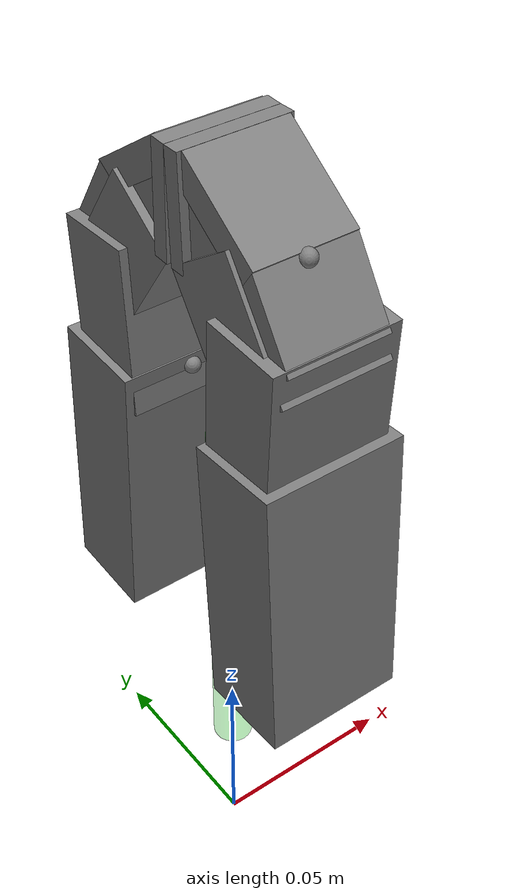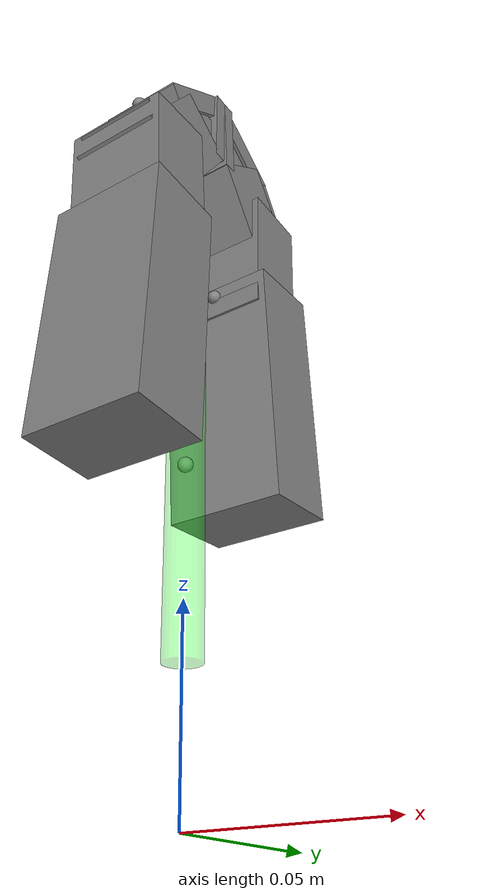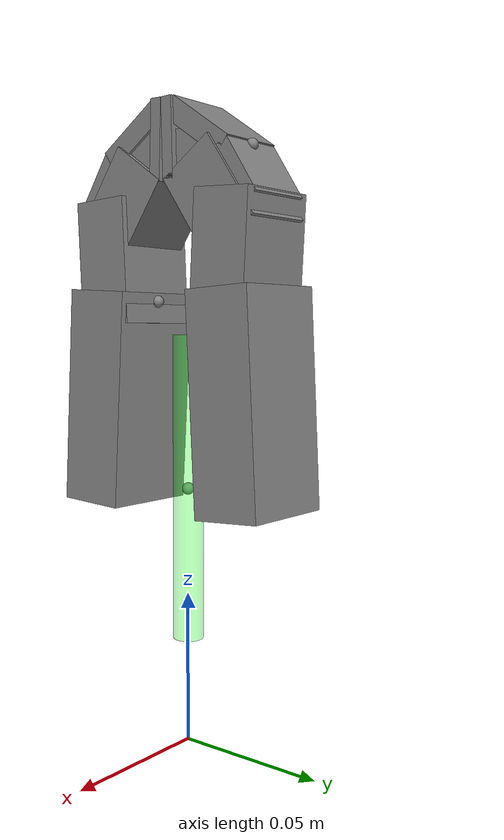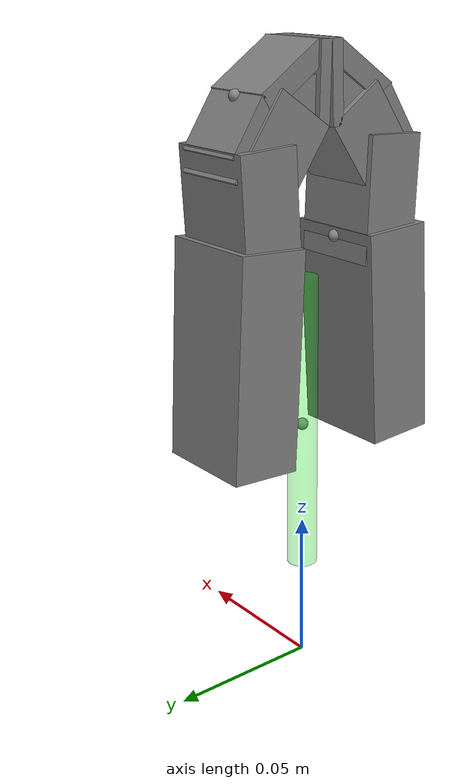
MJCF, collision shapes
<?xml version='1.0' encoding='utf-8'?>
<mujoco model="P-Rob3 P-Grip">

    <asset>
        <mesh name="finger" file="meshes/finger.obj" />
        <mesh name="finger_connector_shape"
              file="meshes/finger_connector_shape.obj"
              scale="0.01 0.01 0.01" />
        <mesh name="screw" file="meshes/screw.obj" />

        <material name="rubber"
                  rgba="0.025 0.025 0.025 1"
                  shininess="0.9"
                  specular="0.25" />

        <material name="metal"
                  rgba="0.7 0.7 0.7 1"
                  shininess="0.3"
                  specular="0.25" />
    </asset>

    <worldbody>

        <body name="gripper_base" pos="0 0 0">

            <body name="eef" pos="0 0 0">

                <site name="ft_frame"
                      pos="0 0 0"
                      size="0.001"
                      type="sphere"
                      rgba="1 1 0 0"
                      group="1" />

                <site name="grip_site"
                      pos="0 0 0.085"
                      size="0.002"
                      type="sphere"
                      rgba="1 0 0 0.5"
                      group="1" />

                <site name="grip_site_cylinder"
                      pos="0 0 0.085"
                      size="0.005 0.05"
                      type="cylinder"
                      rgba="0 1 0 0.3"
                      group="1" />

                <site name="ee"
                      pos="0 0 0.085"
                      size="0.001"
                      type="sphere"
                      rgba="0 0 0 0"
                      group="1" />

                <site name="ee_x"
                      pos="0 0 0.085"
                      size="0.003 0.05"
                      type="cylinder"
                      rgba="1 0 0 0"
                      group="1" />

                <site name="ee_y"
                      pos="0 0 0.085"
                      size="0.003 0.05"
                      quat="0.70710678 0.70710678 0 0"
                      rgba="0 1 0 0"
                      group="1" />

                <site name="ee_z"
                      pos="0 0 0.085"
                      size="0.003 0.05"
                      quat="0.70710678 0 0.70710678 0"
                      rgba="0 0 1 0"
                      group="1" />

                <site name="gripper_middle_range_site"
                      pos="0 0 0.085"
                      quat="0.7071091263 -0 -0.7071044361 -0"
                      size="0.002"
                      type="sphere" />

                <!-- RIGHT FINGER               -->

                <body name="right_finger"
                      pos="0 0 0.058"
                      quat="0.9853298847 0.1706605353 0 0">

                    <inertial
                        pos="0 0.0501360152 0.07281600969"
                        mass="0.109592"
                        quat="0.5496682549 0.4448199744 0.4448199744 -0.5496682549"
                        diaginertia="1.434363601e-05 0.0001376381439 0.0001406530893" />

                    <geom name="finger_visual"
                          type="mesh"
                          mesh="finger"
                          material="rubber"
                          pos="-0.0007002 0.0360533 -0.0141252"
                          quat="0.4867420813 0.5129170429 0.4867412544 0.5129144223"
                          contype="0"
                          conaffinity="0"
                          group="2" />

                    <geom name="screw_visual"
                          type="mesh"
                          mesh="screw"
                          material="metal"
                          pos="-0.0007002 0.0360533 -0.0141252"
                          quat="0.4867420813 0.5129170429 0.4867412544 0.5129144223"
                          contype="0"
                          conaffinity="0"
                          group="2" />

                    <geom name="finger_connector_visual"
                          type="mesh"
                          mesh="finger_connector_shape"
                          material="metal"
                          contype="0"
                          conaffinity="0"
                          group="2"
                          quat="0.5000000443 -0.5000001007 -0.4999999275 -0.4999999275" />

                    <geom name="right_finger_col_0"
                          type="box"
                          pos="0 0.0437334 0.0442707"
                          quat="0.9896509577 -0.1434955813 -0 -0"
                          size="0.017 0.0115 0.035"
                          group="3"
                          friction="20 0.005 0.0001" />

                    <geom name="right_finger_col_1"
                          type="box"
                          pos="0 0.0561311 0.0865105"
                          quat="0.9807852207 -0.1950906222 -0 -0"
                          size="0.015 0.01 0.02"
                          group="3"
                          friction="20 0.005 0.0001" />

                    <geom name="right_finger_col_2"
                          type="box"
                          pos="0 0.0566597 0.105248"
                          quat="0.9914449519 0.1305255043 0 0"
                          size="0.013 0.0105 0.015"
                          group="3"
                          friction="20 0.005 0.0001" />

                    <geom name="right_finger_col_3"
                          type="box"
                          pos="0 0.048226 0.127972"
                          quat="0.9876878138 -0.1564377909 0 0"
                          size="0.013 0.002 0.0125"
                          group="3"
                          friction="20 0.005 0.0001" />

                    <geom name="right_finger_col_4"
                          type="box"
                          pos="0 0.058726 0.127073"
                          quat="0.9510578344 0.3090129378 0 0"
                          size="0.012 0.0035 0.0125"
                          group="3"
                          friction="20 0.005 0.0001" />

                    <geom name="right_finger_col_5"
                          type="box"
                          pos="0 0.052619 0.121813"
                          quat="0.8166436106 0.5771422817 0 0"
                          size="0.011 0.007 0.007"
                          group="3"
                          friction="20 0.005 0.0001" />

                    <geom name="right_finger_col_6"
                          type="box"
                          pos="0 0.0673743 0.108562"
                          quat="0.9930704633 0.1175204448 -0 -0"
                          size="0.012 0.0035 0.01"
                          group="3"
                          friction="20 0.005 0.0001" />

                    <joint name="gripper_right"
                           type="hinge"
                           pos="0 0 0"
                           axis="-1 0 0"
                           range="0 0.523599"
                           limited="true"
                           damping="0.03" />

                    <site name="right_finger_sensor_0"
                          pos="0.013 0.02 0.118"
                          quat="1 0 0 0.523599"
                          size="0.002"
                          type="sphere" />

                    <site name="right_finger_sensor_1"
                          pos="-0.013 0.02 0.118"
                          quat="0 0.2588189596 0.9659258492 3.14159"
                          size="0.002"
                          type="sphere" />

                    <site name="right_finger_sensor_2"
                          pos="-7.548e-10 0.0214379 0.13449"
                          quat="-0.2843081537 -0.7040203807 -0.6507873519 1.65885"
                          size="0.002"
                          type="sphere" />

                    <site name="right_finger_sensor_3"
                          pos="-6.75982e-08 0.0173238 0.0871813"
                          quat="0.1294270016 0.3794640046 0.9161090112 1.58784"
                          size="0.002"
                          type="sphere" />

                </body>

                <!-- LEFT FINGER                -->

                <body name="left_finger"
                      pos="0 0 0.058"
                      quat="1.326794897e-06 0 0.1706609671 0.9853298099">

                    <inertial
                        pos="0 0.0501360152 0.07281600969"
                        mass="0.109592"
                        quat="0.5496682549 0.4448199744 0.4448199744 -0.5496682549"
                        diaginertia="1.434363601e-05 0.0001376381439 0.0001406530893" />

                    <geom name="left_finger_visual"
                          type="mesh"
                          mesh="finger"
                          material="rubber"
                          pos="-0.0007002 0.0360533 -0.0141252"
                          quat="0.4867420813 0.5129170429 0.4867412544 0.5129144223"
                          contype="0"
                          conaffinity="0"
                          group="2" />

                    <geom name="left_screw_visual"
                          type="mesh"
                          mesh="screw"
                          material="metal"
                          pos="-0.0007002 0.0360533 -0.0141252"
                          quat="0.4867420813 0.5129170429 0.4867412544 0.5129144223"
                          contype="0"
                          conaffinity="0"
                          group="2" />

                    <geom name="left_finger_connector_visual"
                          type="mesh"
                          mesh="finger_connector_shape"
                          material="metal"
                          contype="0"
                          conaffinity="0"
                          group="2"
                          quat="0.5000000443 -0.5000001007 -0.4999999275 -0.4999999275" />

                    <geom name="left_finger_col_0"
                          type="box"
                          pos="0 0.0437334 0.0442707"
                          quat="0.9896509577 -0.1434955813 -0 -0"
                          size="0.017 0.0115 0.035"
                          group="3"
                          friction="20 0.005 0.0001" />

                    <geom name="left_finger_col_1"
                          type="box"
                          pos="0 0.0561311 0.0865105"
                          quat="0.9807852207 -0.1950906222 -0 -0"
                          size="0.015 0.01 0.02"
                          group="3"
                          friction="20 0.005 0.0001" />

                    <geom name="left_finger_col_2"
                          type="box"
                          pos="0 0.0566597 0.105248"
                          quat="0.9914449519 0.1305255043 0 0"
                          size="0.013 0.0105 0.015"
                          group="3"
                          friction="20 0.005 0.0001" />

                    <geom name="left_finger_col_3"
                          type="box"
                          pos="0 0.048226 0.127972"
                          quat="0.9876878138 -0.1564377909 0 0"
                          size="0.013 0.002 0.0125"
                          group="3"
                          friction="20 0.005 0.0001" />

                    <geom name="left_finger_col_4"
                          type="box"
                          pos="0 0.058726 0.127073"
                          quat="0.9510578344 0.3090129378 0 0"
                          size="0.012 0.0035 0.0125"
                          group="3"
                          friction="20 0.005 0.0001" />

                    <geom name="left_finger_col_5"
                          type="box"
                          pos="0 0.052619 0.121813"
                          quat="0.8166436106 0.5771422817 0 0"
                          size="0.011 0.007 0.007"
                          group="3"
                          friction="20 0.005 0.0001" />

                    <geom name="left_finger_col_6"
                          type="box"
                          pos="0 0.0673743 0.108562"
                          quat="0.9930704633 0.1175204448 -0 -0"
                          size="0.012 0.0035 0.01"
                          group="3"
                          friction="20 0.005 0.0001" />

                    <joint name="gripper_left"
                           type="hinge"
                           pos="0 0 0"
                           axis="-1 0 0"
                           range="0 0.523599"
                           limited="true"
                           damping="0.03" />

                    <site name="left_finger_sensor_0"
                          pos="0.013 0.02 0.118"
                          quat="1 0 0 0.523602"
                          size="0.002"
                          type="sphere" />

                    <site name="left_finger_sensor_1"
                          pos="-0.013 0.02 0.118"
                          quat="0 0.2588189596 0.9659258492 3.14159"
                          size="0.002"
                          type="sphere" />

                    <site name="left_finger_sensor_2"
                          pos="-7.548e-10 0.0214379 0.13449"
                          quat="-0.2843081537 -0.7040203807 -0.6507873519 1.65885"
                          size="0.002"
                          type="sphere" />

                    <site name="left_finger_sensor_3"
                          pos="-6.75982e-08 0.0173238 0.0871813"
                          quat="-0.1294270016 -0.3794640046 -0.9161090112 -1.587845307"
                          size="0.002"
                          type="sphere" />

                </body>

            </body>

        </body>

    </worldbody>

    <equality>
        <joint joint1="gripper_right"
               joint2="gripper_left"
               polycoef="0 1 0 0 0" />
    </equality>

    <!--
        Only ONE actuator is needed.

        The left finger follows the right finger through
        the equality constraint.
    -->
    <actuator>

        <position name="gripper_right_motor"
                  joint="gripper_right"
                  kp="2"
                  ctrlrange="0.05 1.0472"
                  ctrllimited="true"
                  forcelimited="true"
                  forcerange="-5.44164 5.44164" />

    </actuator>

    <sensor>

        <force name="force_ee"
               site="ft_frame" />

        <torque name="torque_ee"
                site="ft_frame" />

        <rangefinder name="gripper_middle_distance_sensor"
                     site="gripper_middle_range_site" />

        <rangefinder name="right_finger_sensor_0"
                     site="right_finger_sensor_0" />

        <rangefinder name="right_finger_sensor_1"
                     site="right_finger_sensor_1" />

        <rangefinder name="right_finger_sensor_2"
                     site="right_finger_sensor_2" />

        <rangefinder name="right_finger_sensor_3"
                     site="right_finger_sensor_3" />

        <rangefinder name="left_finger_sensor_0"
                     site="left_finger_sensor_0" />

        <rangefinder name="left_finger_sensor_1"
                     site="left_finger_sensor_1" />

        <rangefinder name="left_finger_sensor_2"
                     site="left_finger_sensor_2" />

        <rangefinder name="left_finger_sensor_3"
                     site="left_finger_sensor_3" />

    </sensor>

</mujoco>
